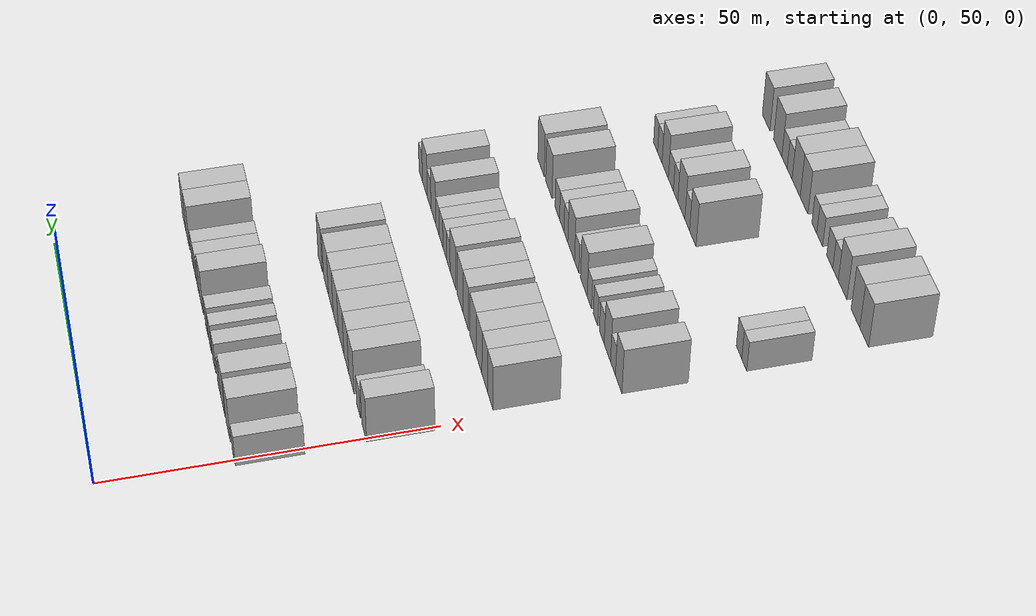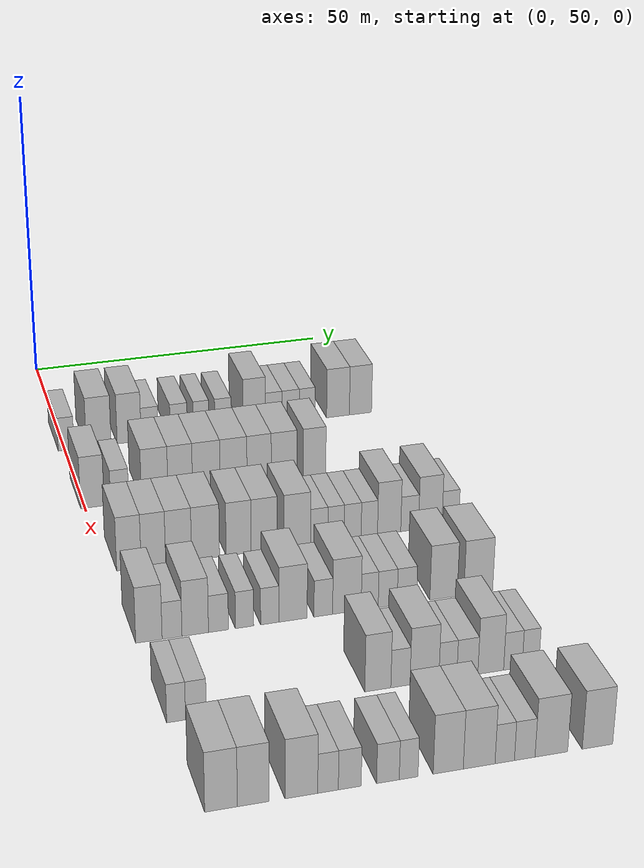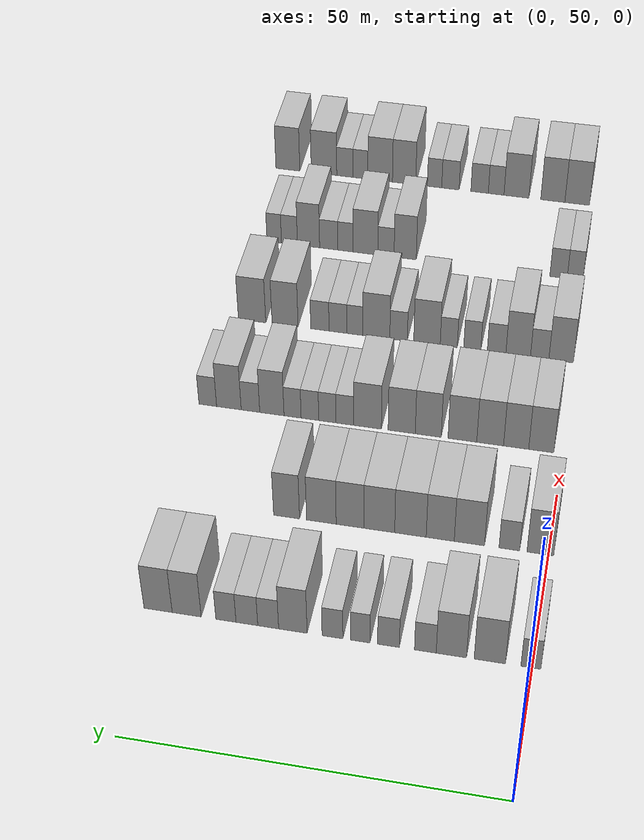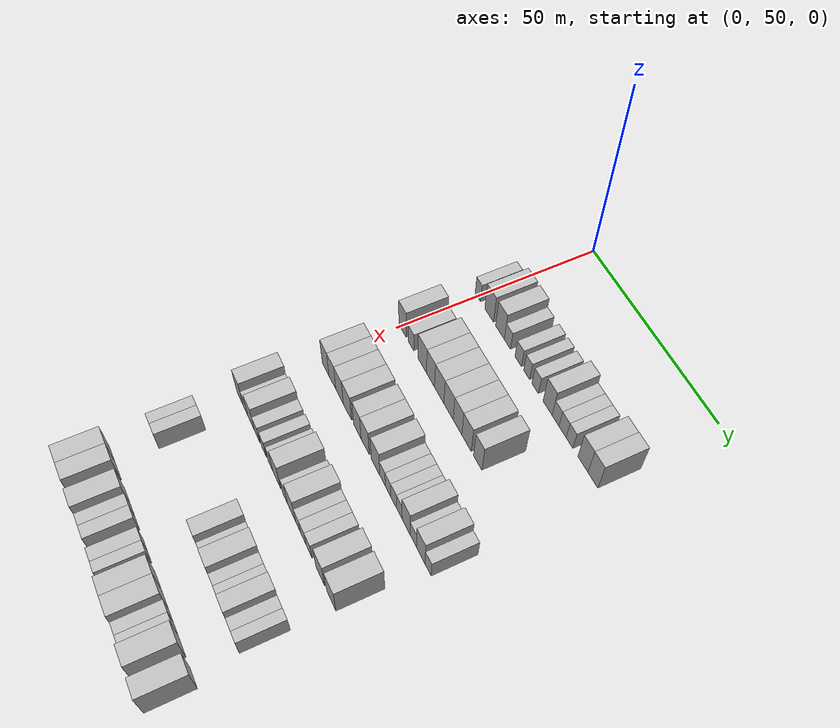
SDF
<sdf version="1.6">
 <world name="default">
  <model name="building_96">
   <static>1</static>
   <pose>25.0000 50.2484 0 0.000000 0.000000 0.000000</pose>
   <link name="link">
    <pose>0 0 3.00 0 0 0</pose>
    <collision name="collision"><geometry><box><size>10.0000 2.5949 6.0000</size></box></geometry></collision>
    <visual name="visual">
     <cast_shadows>0</cast_shadows>
     <geometry><box><size>10.0000 2.5949 6.0000</size></box></geometry>
     <material>
      <script>
       <uri>model://HANNAS_wall/materials/scripts</uri>
       <uri>model://HANNAS_wall/materials/textures</uri>
       <name>vrc/HANNAS_wall</name>
      </script>
     </material>
    </visual>
   </link>
  </model>
  <model name="building_97">
   <static>1</static>
   <pose>25.0000 55.5874 0 0.000000 0.000000 0.000000</pose>
   <link name="link">
    <pose>0 0 4.50 0 0 0</pose>
    <collision name="collision"><geometry><box><size>10.0000 4.0831 9.0000</size></box></geometry></collision>
    <visual name="visual">
     <cast_shadows>0</cast_shadows>
     <geometry><box><size>10.0000 4.0831 9.0000</size></box></geometry>
     <material>
      <script>
       <uri>model://HANNAS_wall/materials/scripts</uri>
       <uri>model://HANNAS_wall/materials/textures</uri>
       <name>vrc/HANNAS_wall</name>
      </script>
     </material>
    </visual>
   </link>
  </model>
  <model name="building_98">
   <static>1</static>
   <pose>25.0000 60.6156 0 0.000000 0.000000 0.000000</pose>
   <link name="link">
    <pose>0 0 4.50 0 0 0</pose>
    <collision name="collision"><geometry><box><size>10.0000 3.9732 9.0000</size></box></geometry></collision>
    <visual name="visual">
     <cast_shadows>0</cast_shadows>
     <geometry><box><size>10.0000 3.9732 9.0000</size></box></geometry>
     <material>
      <script>
       <uri>model://HANNAS_wall/materials/scripts</uri>
       <uri>model://HANNAS_wall/materials/textures</uri>
       <name>vrc/HANNAS_wall</name>
      </script>
     </material>
    </visual>
   </link>
  </model>
  <model name="building_99">
   <static>1</static>
   <pose>25.0000 64.0309 0 0.000000 0.000000 0.000000</pose>
   <link name="link">
    <pose>0 0 3.00 0 0 0</pose>
    <collision name="collision"><geometry><box><size>10.0000 2.8574 6.0000</size></box></geometry></collision>
    <visual name="visual">
     <cast_shadows>0</cast_shadows>
     <geometry><box><size>10.0000 2.8574 6.0000</size></box></geometry>
     <material>
      <script>
       <uri>model://HANNAS_wall/materials/scripts</uri>
       <uri>model://HANNAS_wall/materials/textures</uri>
       <name>vrc/HANNAS_wall</name>
      </script>
     </material>
    </visual>
   </link>
  </model>
  <model name="building_100">
   <static>1</static>
   <pose>25.0000 68.9005 0 0.000000 0.000000 0.000000</pose>
   <link name="link">
    <pose>0 0 3.00 0 0 0</pose>
    <collision name="collision"><geometry><box><size>10.0000 2.8818 6.0000</size></box></geometry></collision>
    <visual name="visual">
     <cast_shadows>0</cast_shadows>
     <geometry><box><size>10.0000 2.8818 6.0000</size></box></geometry>
     <material>
      <script>
       <uri>model://HANNAS_wall/materials/scripts</uri>
       <uri>model://HANNAS_wall/materials/textures</uri>
       <name>vrc/HANNAS_wall</name>
      </script>
     </material>
    </visual>
   </link>
  </model>
  <model name="building_101">
   <static>1</static>
   <pose>25.0000 72.6469 0 0.000000 0.000000 0.000000</pose>
   <link name="link">
    <pose>0 0 3.00 0 0 0</pose>
    <collision name="collision"><geometry><box><size>10.0000 2.6111 6.0000</size></box></geometry></collision>
    <visual name="visual">
     <cast_shadows>0</cast_shadows>
     <geometry><box><size>10.0000 2.6111 6.0000</size></box></geometry>
     <material>
      <script>
       <uri>model://HANNAS_wall/materials/scripts</uri>
       <uri>model://HANNAS_wall/materials/textures</uri>
       <name>vrc/HANNAS_wall</name>
      </script>
     </material>
    </visual>
   </link>
  </model>
  <model name="building_102">
   <static>1</static>
   <pose>25.0000 76.3425 0 0.000000 0.000000 0.000000</pose>
   <link name="link">
    <pose>0 0 3.00 0 0 0</pose>
    <collision name="collision"><geometry><box><size>10.0000 2.7801 6.0000</size></box></geometry></collision>
    <visual name="visual">
     <cast_shadows>0</cast_shadows>
     <geometry><box><size>10.0000 2.7801 6.0000</size></box></geometry>
     <material>
      <script>
       <uri>model://HANNAS_wall/materials/scripts</uri>
       <uri>model://HANNAS_wall/materials/textures</uri>
       <name>vrc/HANNAS_wall</name>
      </script>
     </material>
    </visual>
   </link>
  </model>
  <model name="building_103">
   <static>1</static>
   <pose>25.0000 81.6459 0 0.000000 0.000000 0.000000</pose>
   <link name="link">
    <pose>0 0 4.50 0 0 0</pose>
    <collision name="collision"><geometry><box><size>10.0000 3.8268 9.0000</size></box></geometry></collision>
    <visual name="visual">
     <cast_shadows>0</cast_shadows>
     <geometry><box><size>10.0000 3.8268 9.0000</size></box></geometry>
     <material>
      <script>
       <uri>model://HANNAS_wall/materials/scripts</uri>
       <uri>model://HANNAS_wall/materials/textures</uri>
       <name>vrc/HANNAS_wall</name>
      </script>
     </material>
    </visual>
   </link>
  </model>
  <model name="building_104">
   <static>1</static>
   <pose>25.0000 84.9682 0 0.000000 0.000000 0.000000</pose>
   <link name="link">
    <pose>0 0 3.00 0 0 0</pose>
    <collision name="collision"><geometry><box><size>10.0000 2.8178 6.0000</size></box></geometry></collision>
    <visual name="visual">
     <cast_shadows>0</cast_shadows>
     <geometry><box><size>10.0000 2.8178 6.0000</size></box></geometry>
     <material>
      <script>
       <uri>model://HANNAS_wall/materials/scripts</uri>
       <uri>model://HANNAS_wall/materials/textures</uri>
       <name>vrc/HANNAS_wall</name>
      </script>
     </material>
    </visual>
   </link>
  </model>
  <model name="building_105">
   <static>1</static>
   <pose>25.0000 87.8479 0 0.000000 0.000000 0.000000</pose>
   <link name="link">
    <pose>0 0 3.00 0 0 0</pose>
    <collision name="collision"><geometry><box><size>10.0000 2.9416 6.0000</size></box></geometry></collision>
    <visual name="visual">
     <cast_shadows>0</cast_shadows>
     <geometry><box><size>10.0000 2.9416 6.0000</size></box></geometry>
     <material>
      <script>
       <uri>model://HANNAS_wall/materials/scripts</uri>
       <uri>model://HANNAS_wall/materials/textures</uri>
       <name>vrc/HANNAS_wall</name>
      </script>
     </material>
    </visual>
   </link>
  </model>
  <model name="building_106">
   <static>1</static>
   <pose>25.0000 90.6878 0 0.000000 0.000000 0.000000</pose>
   <link name="link">
    <pose>0 0 3.00 0 0 0</pose>
    <collision name="collision"><geometry><box><size>10.0000 2.7381 6.0000</size></box></geometry></collision>
    <visual name="visual">
     <cast_shadows>0</cast_shadows>
     <geometry><box><size>10.0000 2.7381 6.0000</size></box></geometry>
     <material>
      <script>
       <uri>model://HANNAS_wall/materials/scripts</uri>
       <uri>model://HANNAS_wall/materials/textures</uri>
       <name>vrc/HANNAS_wall</name>
      </script>
     </material>
    </visual>
   </link>
  </model>
  <model name="building_107">
   <static>1</static>
   <pose>25.0000 96.0374 0 0.000000 0.000000 0.000000</pose>
   <link name="link">
    <pose>0 0 4.50 0 0 0</pose>
    <collision name="collision"><geometry><box><size>10.0000 3.9611 9.0000</size></box></geometry></collision>
    <visual name="visual">
     <cast_shadows>0</cast_shadows>
     <geometry><box><size>10.0000 3.9611 9.0000</size></box></geometry>
     <material>
      <script>
       <uri>model://HANNAS_wall/materials/scripts</uri>
       <uri>model://HANNAS_wall/materials/textures</uri>
       <name>vrc/HANNAS_wall</name>
      </script>
     </material>
    </visual>
   </link>
  </model>
  <model name="building_108">
   <static>1</static>
   <pose>25.0000 99.9492 0 0.000000 0.000000 0.000000</pose>
   <link name="link">
    <pose>0 0 4.50 0 0 0</pose>
    <collision name="collision"><geometry><box><size>10.0000 3.8624 9.0000</size></box></geometry></collision>
    <visual name="visual">
     <cast_shadows>0</cast_shadows>
     <geometry><box><size>10.0000 3.8624 9.0000</size></box></geometry>
     <material>
      <script>
       <uri>model://HANNAS_wall/materials/scripts</uri>
       <uri>model://HANNAS_wall/materials/textures</uri>
       <name>vrc/HANNAS_wall</name>
      </script>
     </material>
    </visual>
   </link>
  </model>
  <model name="building_282">
   <static>1</static>
   <pose>44.0000 51.1766 0 0.000000 0.000000 0.000000</pose>
   <link name="link">
    <pose>0 0 4.50 0 0 0</pose>
    <collision name="collision"><geometry><box><size>10.0000 3.6760 9.0000</size></box></geometry></collision>
    <visual name="visual">
     <cast_shadows>0</cast_shadows>
     <geometry><box><size>10.0000 3.6760 9.0000</size></box></geometry>
     <material>
      <script>
       <uri>model://HANNAS_wall/materials/scripts</uri>
       <uri>model://HANNAS_wall/materials/textures</uri>
       <name>vrc/HANNAS_wall</name>
      </script>
     </material>
    </visual>
   </link>
  </model>
  <model name="building_283">
   <static>1</static>
   <pose>44.0000 55.4417 0 0.000000 0.000000 0.000000</pose>
   <link name="link">
    <pose>0 0 3.00 0 0 0</pose>
    <collision name="collision"><geometry><box><size>10.0000 2.8542 6.0000</size></box></geometry></collision>
    <visual name="visual">
     <cast_shadows>0</cast_shadows>
     <geometry><box><size>10.0000 2.8542 6.0000</size></box></geometry>
     <material>
      <script>
       <uri>model://HANNAS_wall/materials/scripts</uri>
       <uri>model://HANNAS_wall/materials/textures</uri>
       <name>vrc/HANNAS_wall</name>
      </script>
     </material>
    </visual>
   </link>
  </model>
  <model name="building_284">
   <static>1</static>
   <pose>44.0000 60.9685 0 0.000000 0.000000 0.000000</pose>
   <link name="link">
    <pose>0 0 4.50 0 0 0</pose>
    <collision name="collision"><geometry><box><size>10.0000 4.1994 9.0000</size></box></geometry></collision>
    <visual name="visual">
     <cast_shadows>0</cast_shadows>
     <geometry><box><size>10.0000 4.1994 9.0000</size></box></geometry>
     <material>
      <script>
       <uri>model://HANNAS_wall/materials/scripts</uri>
       <uri>model://HANNAS_wall/materials/textures</uri>
       <name>vrc/HANNAS_wall</name>
      </script>
     </material>
    </visual>
   </link>
  </model>
  <model name="building_285">
   <static>1</static>
   <pose>44.0000 65.0219 0 0.000000 0.000000 0.000000</pose>
   <link name="link">
    <pose>0 0 4.50 0 0 0</pose>
    <collision name="collision"><geometry><box><size>10.0000 3.9074 9.0000</size></box></geometry></collision>
    <visual name="visual">
     <cast_shadows>0</cast_shadows>
     <geometry><box><size>10.0000 3.9074 9.0000</size></box></geometry>
     <material>
      <script>
       <uri>model://HANNAS_wall/materials/scripts</uri>
       <uri>model://HANNAS_wall/materials/textures</uri>
       <name>vrc/HANNAS_wall</name>
      </script>
     </material>
    </visual>
   </link>
  </model>
  <model name="building_286">
   <static>1</static>
   <pose>44.0000 69.1785 0 0.000000 0.000000 0.000000</pose>
   <link name="link">
    <pose>0 0 4.50 0 0 0</pose>
    <collision name="collision"><geometry><box><size>10.0000 4.4058 9.0000</size></box></geometry></collision>
    <visual name="visual">
     <cast_shadows>0</cast_shadows>
     <geometry><box><size>10.0000 4.4058 9.0000</size></box></geometry>
     <material>
      <script>
       <uri>model://HANNAS_wall/materials/scripts</uri>
       <uri>model://HANNAS_wall/materials/textures</uri>
       <name>vrc/HANNAS_wall</name>
      </script>
     </material>
    </visual>
   </link>
  </model>
  <model name="building_287">
   <static>1</static>
   <pose>44.0000 73.5470 0 0.000000 0.000000 0.000000</pose>
   <link name="link">
    <pose>0 0 4.50 0 0 0</pose>
    <collision name="collision"><geometry><box><size>10.0000 4.3311 9.0000</size></box></geometry></collision>
    <visual name="visual">
     <cast_shadows>0</cast_shadows>
     <geometry><box><size>10.0000 4.3311 9.0000</size></box></geometry>
     <material>
      <script>
       <uri>model://HANNAS_wall/materials/scripts</uri>
       <uri>model://HANNAS_wall/materials/textures</uri>
       <name>vrc/HANNAS_wall</name>
      </script>
     </material>
    </visual>
   </link>
  </model>
  <model name="building_288">
   <static>1</static>
   <pose>44.0000 77.6690 0 0.000000 0.000000 0.000000</pose>
   <link name="link">
    <pose>0 0 4.50 0 0 0</pose>
    <collision name="collision"><geometry><box><size>10.0000 3.9130 9.0000</size></box></geometry></collision>
    <visual name="visual">
     <cast_shadows>0</cast_shadows>
     <geometry><box><size>10.0000 3.9130 9.0000</size></box></geometry>
     <material>
      <script>
       <uri>model://HANNAS_wall/materials/scripts</uri>
       <uri>model://HANNAS_wall/materials/textures</uri>
       <name>vrc/HANNAS_wall</name>
      </script>
     </material>
    </visual>
   </link>
  </model>
  <model name="building_289">
   <static>1</static>
   <pose>44.0000 81.7234 0 0.000000 0.000000 0.000000</pose>
   <link name="link">
    <pose>0 0 4.50 0 0 0</pose>
    <collision name="collision"><geometry><box><size>10.0000 4.1957 9.0000</size></box></geometry></collision>
    <visual name="visual">
     <cast_shadows>0</cast_shadows>
     <geometry><box><size>10.0000 4.1957 9.0000</size></box></geometry>
     <material>
      <script>
       <uri>model://HANNAS_wall/materials/scripts</uri>
       <uri>model://HANNAS_wall/materials/textures</uri>
       <name>vrc/HANNAS_wall</name>
      </script>
     </material>
    </visual>
   </link>
  </model>
  <model name="building_290">
   <static>1</static>
   <pose>44.0000 86.6669 0 0.000000 0.000000 0.000000</pose>
   <link name="link">
    <pose>0 0 4.50 0 0 0</pose>
    <collision name="collision"><geometry><box><size>10.0000 3.6913 9.0000</size></box></geometry></collision>
    <visual name="visual">
     <cast_shadows>0</cast_shadows>
     <geometry><box><size>10.0000 3.6913 9.0000</size></box></geometry>
     <material>
      <script>
       <uri>model://HANNAS_wall/materials/scripts</uri>
       <uri>model://HANNAS_wall/materials/textures</uri>
       <name>vrc/HANNAS_wall</name>
      </script>
     </material>
    </visual>
   </link>
  </model>
  <model name="building_444">
   <static>1</static>
   <pose>63.0000 53.2009 0 0.000000 0.000000 0.000000</pose>
   <link name="link">
    <pose>0 0 4.50 0 0 0</pose>
    <collision name="collision"><geometry><box><size>10.0000 3.6433 9.0000</size></box></geometry></collision>
    <visual name="visual">
     <cast_shadows>0</cast_shadows>
     <geometry><box><size>10.0000 3.6433 9.0000</size></box></geometry>
     <material>
      <script>
       <uri>model://HANNAS_wall/materials/scripts</uri>
       <uri>model://HANNAS_wall/materials/textures</uri>
       <name>vrc/HANNAS_wall</name>
      </script>
     </material>
    </visual>
   </link>
  </model>
  <model name="building_445">
   <static>1</static>
   <pose>63.0000 56.8522 0 0.000000 0.000000 0.000000</pose>
   <link name="link">
    <pose>0 0 4.50 0 0 0</pose>
    <collision name="collision"><geometry><box><size>10.0000 3.6593 9.0000</size></box></geometry></collision>
    <visual name="visual">
     <cast_shadows>0</cast_shadows>
     <geometry><box><size>10.0000 3.6593 9.0000</size></box></geometry>
     <material>
      <script>
       <uri>model://HANNAS_wall/materials/scripts</uri>
       <uri>model://HANNAS_wall/materials/textures</uri>
       <name>vrc/HANNAS_wall</name>
      </script>
     </material>
    </visual>
   </link>
  </model>
  <model name="building_446">
   <static>1</static>
   <pose>63.0000 60.6378 0 0.000000 0.000000 0.000000</pose>
   <link name="link">
    <pose>0 0 4.50 0 0 0</pose>
    <collision name="collision"><geometry><box><size>10.0000 3.9119 9.0000</size></box></geometry></collision>
    <visual name="visual">
     <cast_shadows>0</cast_shadows>
     <geometry><box><size>10.0000 3.9119 9.0000</size></box></geometry>
     <material>
      <script>
       <uri>model://HANNAS_wall/materials/scripts</uri>
       <uri>model://HANNAS_wall/materials/textures</uri>
       <name>vrc/HANNAS_wall</name>
      </script>
     </material>
    </visual>
   </link>
  </model>
  <model name="building_447">
   <static>1</static>
   <pose>63.0000 64.7044 0 0.000000 0.000000 0.000000</pose>
   <link name="link">
    <pose>0 0 4.50 0 0 0</pose>
    <collision name="collision"><geometry><box><size>10.0000 4.2214 9.0000</size></box></geometry></collision>
    <visual name="visual">
     <cast_shadows>0</cast_shadows>
     <geometry><box><size>10.0000 4.2214 9.0000</size></box></geometry>
     <material>
      <script>
       <uri>model://HANNAS_wall/materials/scripts</uri>
       <uri>model://HANNAS_wall/materials/textures</uri>
       <name>vrc/HANNAS_wall</name>
      </script>
     </material>
    </visual>
   </link>
  </model>
  <model name="building_448">
   <static>1</static>
   <pose>63.0000 69.7297 0 0.000000 0.000000 0.000000</pose>
   <link name="link">
    <pose>0 0 4.50 0 0 0</pose>
    <collision name="collision"><geometry><box><size>10.0000 3.8292 9.0000</size></box></geometry></collision>
    <visual name="visual">
     <cast_shadows>0</cast_shadows>
     <geometry><box><size>10.0000 3.8292 9.0000</size></box></geometry>
     <material>
      <script>
       <uri>model://HANNAS_wall/materials/scripts</uri>
       <uri>model://HANNAS_wall/materials/textures</uri>
       <name>vrc/HANNAS_wall</name>
      </script>
     </material>
    </visual>
   </link>
  </model>
  <model name="building_449">
   <static>1</static>
   <pose>63.0000 73.6519 0 0.000000 0.000000 0.000000</pose>
   <link name="link">
    <pose>0 0 4.50 0 0 0</pose>
    <collision name="collision"><geometry><box><size>10.0000 4.0152 9.0000</size></box></geometry></collision>
    <visual name="visual">
     <cast_shadows>0</cast_shadows>
     <geometry><box><size>10.0000 4.0152 9.0000</size></box></geometry>
     <material>
      <script>
       <uri>model://HANNAS_wall/materials/scripts</uri>
       <uri>model://HANNAS_wall/materials/textures</uri>
       <name>vrc/HANNAS_wall</name>
      </script>
     </material>
    </visual>
   </link>
  </model>
  <model name="building_450">
   <static>1</static>
   <pose>63.0000 78.7221 0 0.000000 0.000000 0.000000</pose>
   <link name="link">
    <pose>0 0 4.50 0 0 0</pose>
    <collision name="collision"><geometry><box><size>10.0000 4.1252 9.0000</size></box></geometry></collision>
    <visual name="visual">
     <cast_shadows>0</cast_shadows>
     <geometry><box><size>10.0000 4.1252 9.0000</size></box></geometry>
     <material>
      <script>
       <uri>model://HANNAS_wall/materials/scripts</uri>
       <uri>model://HANNAS_wall/materials/textures</uri>
       <name>vrc/HANNAS_wall</name>
      </script>
     </material>
    </visual>
   </link>
  </model>
  <model name="building_451">
   <static>1</static>
   <pose>63.0000 82.1133 0 0.000000 0.000000 0.000000</pose>
   <link name="link">
    <pose>0 0 3.00 0 0 0</pose>
    <collision name="collision"><geometry><box><size>10.0000 2.6571 6.0000</size></box></geometry></collision>
    <visual name="visual">
     <cast_shadows>0</cast_shadows>
     <geometry><box><size>10.0000 2.6571 6.0000</size></box></geometry>
     <material>
      <script>
       <uri>model://HANNAS_wall/materials/scripts</uri>
       <uri>model://HANNAS_wall/materials/textures</uri>
       <name>vrc/HANNAS_wall</name>
      </script>
     </material>
    </visual>
   </link>
  </model>
  <model name="building_452">
   <static>1</static>
   <pose>63.0000 84.7271 0 0.000000 0.000000 0.000000</pose>
   <link name="link">
    <pose>0 0 3.00 0 0 0</pose>
    <collision name="collision"><geometry><box><size>10.0000 2.5704 6.0000</size></box></geometry></collision>
    <visual name="visual">
     <cast_shadows>0</cast_shadows>
     <geometry><box><size>10.0000 2.5704 6.0000</size></box></geometry>
     <material>
      <script>
       <uri>model://HANNAS_wall/materials/scripts</uri>
       <uri>model://HANNAS_wall/materials/textures</uri>
       <name>vrc/HANNAS_wall</name>
      </script>
     </material>
    </visual>
   </link>
  </model>
  <model name="building_453">
   <static>1</static>
   <pose>63.0000 87.3354 0 0.000000 0.000000 0.000000</pose>
   <link name="link">
    <pose>0 0 3.00 0 0 0</pose>
    <collision name="collision"><geometry><box><size>10.0000 2.6463 6.0000</size></box></geometry></collision>
    <visual name="visual">
     <cast_shadows>0</cast_shadows>
     <geometry><box><size>10.0000 2.6463 6.0000</size></box></geometry>
     <material>
      <script>
       <uri>model://HANNAS_wall/materials/scripts</uri>
       <uri>model://HANNAS_wall/materials/textures</uri>
       <name>vrc/HANNAS_wall</name>
      </script>
     </material>
    </visual>
   </link>
  </model>
  <model name="building_454">
   <static>1</static>
   <pose>63.0000 89.9428 0 0.000000 0.000000 0.000000</pose>
   <link name="link">
    <pose>0 0 3.00 0 0 0</pose>
    <collision name="collision"><geometry><box><size>10.0000 2.5684 6.0000</size></box></geometry></collision>
    <visual name="visual">
     <cast_shadows>0</cast_shadows>
     <geometry><box><size>10.0000 2.5684 6.0000</size></box></geometry>
     <material>
      <script>
       <uri>model://HANNAS_wall/materials/scripts</uri>
       <uri>model://HANNAS_wall/materials/textures</uri>
       <name>vrc/HANNAS_wall</name>
      </script>
     </material>
    </visual>
   </link>
  </model>
  <model name="building_455">
   <static>1</static>
   <pose>63.0000 93.0637 0 0.000000 0.000000 0.000000</pose>
   <link name="link">
    <pose>0 0 4.50 0 0 0</pose>
    <collision name="collision"><geometry><box><size>10.0000 3.6734 9.0000</size></box></geometry></collision>
    <visual name="visual">
     <cast_shadows>0</cast_shadows>
     <geometry><box><size>10.0000 3.6734 9.0000</size></box></geometry>
     <material>
      <script>
       <uri>model://HANNAS_wall/materials/scripts</uri>
       <uri>model://HANNAS_wall/materials/textures</uri>
       <name>vrc/HANNAS_wall</name>
      </script>
     </material>
    </visual>
   </link>
  </model>
  <model name="building_456">
   <static>1</static>
   <pose>63.0000 96.3059 0 0.000000 0.000000 0.000000</pose>
   <link name="link">
    <pose>0 0 3.00 0 0 0</pose>
    <collision name="collision"><geometry><box><size>10.0000 2.8109 6.0000</size></box></geometry></collision>
    <visual name="visual">
     <cast_shadows>0</cast_shadows>
     <geometry><box><size>10.0000 2.8109 6.0000</size></box></geometry>
     <material>
      <script>
       <uri>model://HANNAS_wall/materials/scripts</uri>
       <uri>model://HANNAS_wall/materials/textures</uri>
       <name>vrc/HANNAS_wall</name>
      </script>
     </material>
    </visual>
   </link>
  </model>
  <model name="building_457">
   <static>1</static>
   <pose>63.0000 99.5817 0 0.000000 0.000000 0.000000</pose>
   <link name="link">
    <pose>0 0 4.50 0 0 0</pose>
    <collision name="collision"><geometry><box><size>10.0000 3.7407 9.0000</size></box></geometry></collision>
    <visual name="visual">
     <cast_shadows>0</cast_shadows>
     <geometry><box><size>10.0000 3.7407 9.0000</size></box></geometry>
     <material>
      <script>
       <uri>model://HANNAS_wall/materials/scripts</uri>
       <uri>model://HANNAS_wall/materials/textures</uri>
       <name>vrc/HANNAS_wall</name>
      </script>
     </material>
    </visual>
   </link>
  </model>
  <model name="building_458">
   <static>1</static>
   <pose>63.0000 102.7956 0 0.000000 0.000000 0.000000</pose>
   <link name="link">
    <pose>0 0 3.00 0 0 0</pose>
    <collision name="collision"><geometry><box><size>10.0000 2.6871 6.0000</size></box></geometry></collision>
    <visual name="visual">
     <cast_shadows>0</cast_shadows>
     <geometry><box><size>10.0000 2.6871 6.0000</size></box></geometry>
     <material>
      <script>
       <uri>model://HANNAS_wall/materials/scripts</uri>
       <uri>model://HANNAS_wall/materials/textures</uri>
       <name>vrc/HANNAS_wall</name>
      </script>
     </material>
    </visual>
   </link>
  </model>
  <model name="building_624">
   <static>1</static>
   <pose>82.0000 52.3250 0 0.000000 0.000000 0.000000</pose>
   <link name="link">
    <pose>0 0 4.50 0 0 0</pose>
    <collision name="collision"><geometry><box><size>10.0000 3.7265 9.0000</size></box></geometry></collision>
    <visual name="visual">
     <cast_shadows>0</cast_shadows>
     <geometry><box><size>10.0000 3.7265 9.0000</size></box></geometry>
     <material>
      <script>
       <uri>model://HANNAS_wall/materials/scripts</uri>
       <uri>model://HANNAS_wall/materials/textures</uri>
       <name>vrc/HANNAS_wall</name>
      </script>
     </material>
    </visual>
   </link>
  </model>
  <model name="building_625">
   <static>1</static>
   <pose>82.0000 55.5964 0 0.000000 0.000000 0.000000</pose>
   <link name="link">
    <pose>0 0 3.00 0 0 0</pose>
    <collision name="collision"><geometry><box><size>10.0000 2.8162 6.0000</size></box></geometry></collision>
    <visual name="visual">
     <cast_shadows>0</cast_shadows>
     <geometry><box><size>10.0000 2.8162 6.0000</size></box></geometry>
     <material>
      <script>
       <uri>model://HANNAS_wall/materials/scripts</uri>
       <uri>model://HANNAS_wall/materials/textures</uri>
       <name>vrc/HANNAS_wall</name>
      </script>
     </material>
    </visual>
   </link>
  </model>
  <model name="building_626">
   <static>1</static>
   <pose>82.0000 58.8875 0 0.000000 0.000000 0.000000</pose>
   <link name="link">
    <pose>0 0 4.50 0 0 0</pose>
    <collision name="collision"><geometry><box><size>10.0000 3.7661 9.0000</size></box></geometry></collision>
    <visual name="visual">
     <cast_shadows>0</cast_shadows>
     <geometry><box><size>10.0000 3.7661 9.0000</size></box></geometry>
     <material>
      <script>
       <uri>model://HANNAS_wall/materials/scripts</uri>
       <uri>model://HANNAS_wall/materials/textures</uri>
       <name>vrc/HANNAS_wall</name>
      </script>
     </material>
    </visual>
   </link>
  </model>
  <model name="building_627">
   <static>1</static>
   <pose>82.0000 62.1999 0 0.000000 0.000000 0.000000</pose>
   <link name="link">
    <pose>0 0 3.00 0 0 0</pose>
    <collision name="collision"><geometry><box><size>10.0000 2.8587 6.0000</size></box></geometry></collision>
    <visual name="visual">
     <cast_shadows>0</cast_shadows>
     <geometry><box><size>10.0000 2.8587 6.0000</size></box></geometry>
     <material>
      <script>
       <uri>model://HANNAS_wall/materials/scripts</uri>
       <uri>model://HANNAS_wall/materials/textures</uri>
       <name>vrc/HANNAS_wall</name>
      </script>
     </material>
    </visual>
   </link>
  </model>
  <model name="building_628">
   <static>1</static>
   <pose>82.0000 65.9488 0 0.000000 0.000000 0.000000</pose>
   <link name="link">
    <pose>0 0 3.00 0 0 0</pose>
    <collision name="collision"><geometry><box><size>10.0000 2.6391 6.0000</size></box></geometry></collision>
    <visual name="visual">
     <cast_shadows>0</cast_shadows>
     <geometry><box><size>10.0000 2.6391 6.0000</size></box></geometry>
     <material>
      <script>
       <uri>model://HANNAS_wall/materials/scripts</uri>
       <uri>model://HANNAS_wall/materials/textures</uri>
       <name>vrc/HANNAS_wall</name>
      </script>
     </material>
    </visual>
   </link>
  </model>
  <model name="building_629">
   <static>1</static>
   <pose>82.0000 69.5881 0 0.000000 0.000000 0.000000</pose>
   <link name="link">
    <pose>0 0 3.00 0 0 0</pose>
    <collision name="collision"><geometry><box><size>10.0000 2.6393 6.0000</size></box></geometry></collision>
    <visual name="visual">
     <cast_shadows>0</cast_shadows>
     <geometry><box><size>10.0000 2.6393 6.0000</size></box></geometry>
     <material>
      <script>
       <uri>model://HANNAS_wall/materials/scripts</uri>
       <uri>model://HANNAS_wall/materials/textures</uri>
       <name>vrc/HANNAS_wall</name>
      </script>
     </material>
    </visual>
   </link>
  </model>
  <model name="building_630">
   <static>1</static>
   <pose>82.0000 72.9670 0 0.000000 0.000000 0.000000</pose>
   <link name="link">
    <pose>0 0 4.50 0 0 0</pose>
    <collision name="collision"><geometry><box><size>10.0000 4.1186 9.0000</size></box></geometry></collision>
    <visual name="visual">
     <cast_shadows>0</cast_shadows>
     <geometry><box><size>10.0000 4.1186 9.0000</size></box></geometry>
     <material>
      <script>
       <uri>model://HANNAS_wall/materials/scripts</uri>
       <uri>model://HANNAS_wall/materials/textures</uri>
       <name>vrc/HANNAS_wall</name>
      </script>
     </material>
    </visual>
   </link>
  </model>
  <model name="building_631">
   <static>1</static>
   <pose>82.0000 77.3899 0 0.000000 0.000000 0.000000</pose>
   <link name="link">
    <pose>0 0 3.00 0 0 0</pose>
    <collision name="collision"><geometry><box><size>10.0000 2.7272 6.0000</size></box></geometry></collision>
    <visual name="visual">
     <cast_shadows>0</cast_shadows>
     <geometry><box><size>10.0000 2.7272 6.0000</size></box></geometry>
     <material>
      <script>
       <uri>model://HANNAS_wall/materials/scripts</uri>
       <uri>model://HANNAS_wall/materials/textures</uri>
       <name>vrc/HANNAS_wall</name>
      </script>
     </material>
    </visual>
   </link>
  </model>
  <model name="building_632">
   <static>1</static>
   <pose>82.0000 80.8594 0 0.000000 0.000000 0.000000</pose>
   <link name="link">
    <pose>0 0 4.50 0 0 0</pose>
    <collision name="collision"><geometry><box><size>10.0000 4.2118 9.0000</size></box></geometry></collision>
    <visual name="visual">
     <cast_shadows>0</cast_shadows>
     <geometry><box><size>10.0000 4.2118 9.0000</size></box></geometry>
     <material>
      <script>
       <uri>model://HANNAS_wall/materials/scripts</uri>
       <uri>model://HANNAS_wall/materials/textures</uri>
       <name>vrc/HANNAS_wall</name>
      </script>
     </material>
    </visual>
   </link>
  </model>
  <model name="building_633">
   <static>1</static>
   <pose>82.0000 84.2261 0 0.000000 0.000000 0.000000</pose>
   <link name="link">
    <pose>0 0 3.00 0 0 0</pose>
    <collision name="collision"><geometry><box><size>10.0000 2.5215 6.0000</size></box></geometry></collision>
    <visual name="visual">
     <cast_shadows>0</cast_shadows>
     <geometry><box><size>10.0000 2.5215 6.0000</size></box></geometry>
     <material>
      <script>
       <uri>model://HANNAS_wall/materials/scripts</uri>
       <uri>model://HANNAS_wall/materials/textures</uri>
       <name>vrc/HANNAS_wall</name>
      </script>
     </material>
    </visual>
   </link>
  </model>
  <model name="building_634">
   <static>1</static>
   <pose>82.0000 86.8955 0 0.000000 0.000000 0.000000</pose>
   <link name="link">
    <pose>0 0 3.00 0 0 0</pose>
    <collision name="collision"><geometry><box><size>10.0000 2.8173 6.0000</size></box></geometry></collision>
    <visual name="visual">
     <cast_shadows>0</cast_shadows>
     <geometry><box><size>10.0000 2.8173 6.0000</size></box></geometry>
     <material>
      <script>
       <uri>model://HANNAS_wall/materials/scripts</uri>
       <uri>model://HANNAS_wall/materials/textures</uri>
       <name>vrc/HANNAS_wall</name>
      </script>
     </material>
    </visual>
   </link>
  </model>
  <model name="building_635">
   <static>1</static>
   <pose>82.0000 89.7510 0 0.000000 0.000000 0.000000</pose>
   <link name="link">
    <pose>0 0 3.00 0 0 0</pose>
    <collision name="collision"><geometry><box><size>10.0000 2.8939 6.0000</size></box></geometry></collision>
    <visual name="visual">
     <cast_shadows>0</cast_shadows>
     <geometry><box><size>10.0000 2.8939 6.0000</size></box></geometry>
     <material>
      <script>
       <uri>model://HANNAS_wall/materials/scripts</uri>
       <uri>model://HANNAS_wall/materials/textures</uri>
       <name>vrc/HANNAS_wall</name>
      </script>
     </material>
    </visual>
   </link>
  </model>
  <model name="building_636">
   <static>1</static>
   <pose>82.0000 95.2637 0 0.000000 0.000000 0.000000</pose>
   <link name="link">
    <pose>0 0 4.50 0 0 0</pose>
    <collision name="collision"><geometry><box><size>10.0000 4.1314 9.0000</size></box></geometry></collision>
    <visual name="visual">
     <cast_shadows>0</cast_shadows>
     <geometry><box><size>10.0000 4.1314 9.0000</size></box></geometry>
     <material>
      <script>
       <uri>model://HANNAS_wall/materials/scripts</uri>
       <uri>model://HANNAS_wall/materials/textures</uri>
       <name>vrc/HANNAS_wall</name>
      </script>
     </material>
    </visual>
   </link>
  </model>
  <model name="building_637">
   <static>1</static>
   <pose>82.0000 100.5143 0 0.000000 0.000000 0.000000</pose>
   <link name="link">
    <pose>0 0 4.50 0 0 0</pose>
    <collision name="collision"><geometry><box><size>10.0000 4.3698 9.0000</size></box></geometry></collision>
    <visual name="visual">
     <cast_shadows>0</cast_shadows>
     <geometry><box><size>10.0000 4.3698 9.0000</size></box></geometry>
     <material>
      <script>
       <uri>model://HANNAS_wall/materials/scripts</uri>
       <uri>model://HANNAS_wall/materials/textures</uri>
       <name>vrc/HANNAS_wall</name>
      </script>
     </material>
    </visual>
   </link>
  </model>
  <model name="building_801">
   <static>1</static>
   <pose>101.0000 52.0804 0 0.000000 0.000000 0.000000</pose>
   <link name="link">
    <pose>0 0 3.00 0 0 0</pose>
    <collision name="collision"><geometry><box><size>10.0000 2.5208 6.0000</size></box></geometry></collision>
    <visual name="visual">
     <cast_shadows>0</cast_shadows>
     <geometry><box><size>10.0000 2.5208 6.0000</size></box></geometry>
     <material>
      <script>
       <uri>model://HANNAS_wall/materials/scripts</uri>
       <uri>model://HANNAS_wall/materials/textures</uri>
       <name>vrc/HANNAS_wall</name>
      </script>
     </material>
    </visual>
   </link>
  </model>
  <model name="building_802">
   <static>1</static>
   <pose>101.0000 54.7318 0 0.000000 0.000000 0.000000</pose>
   <link name="link">
    <pose>0 0 3.00 0 0 0</pose>
    <collision name="collision"><geometry><box><size>10.0000 2.7818 6.0000</size></box></geometry></collision>
    <visual name="visual">
     <cast_shadows>0</cast_shadows>
     <geometry><box><size>10.0000 2.7818 6.0000</size></box></geometry>
     <material>
      <script>
       <uri>model://HANNAS_wall/materials/scripts</uri>
       <uri>model://HANNAS_wall/materials/textures</uri>
       <name>vrc/HANNAS_wall</name>
      </script>
     </material>
    </visual>
   </link>
  </model>
  <model name="building_803">
   <static>1</static>
   <pose>101.0000 79.5805 0 0.000000 0.000000 0.000000</pose>
   <link name="link">
    <pose>0 0 4.50 0 0 0</pose>
    <collision name="collision"><geometry><box><size>10.0000 3.6385 9.0000</size></box></geometry></collision>
    <visual name="visual">
     <cast_shadows>0</cast_shadows>
     <geometry><box><size>10.0000 3.6385 9.0000</size></box></geometry>
     <material>
      <script>
       <uri>model://HANNAS_wall/materials/scripts</uri>
       <uri>model://HANNAS_wall/materials/textures</uri>
       <name>vrc/HANNAS_wall</name>
      </script>
     </material>
    </visual>
   </link>
  </model>
  <model name="building_804">
   <static>1</static>
   <pose>101.0000 82.7414 0 0.000000 0.000000 0.000000</pose>
   <link name="link">
    <pose>0 0 3.00 0 0 0</pose>
    <collision name="collision"><geometry><box><size>10.0000 2.6832 6.0000</size></box></geometry></collision>
    <visual name="visual">
     <cast_shadows>0</cast_shadows>
     <geometry><box><size>10.0000 2.6832 6.0000</size></box></geometry>
     <material>
      <script>
       <uri>model://HANNAS_wall/materials/scripts</uri>
       <uri>model://HANNAS_wall/materials/textures</uri>
       <name>vrc/HANNAS_wall</name>
      </script>
     </material>
    </visual>
   </link>
  </model>
  <model name="building_805">
   <static>1</static>
   <pose>101.0000 86.1169 0 0.000000 0.000000 0.000000</pose>
   <link name="link">
    <pose>0 0 4.50 0 0 0</pose>
    <collision name="collision"><geometry><box><size>10.0000 4.0679 9.0000</size></box></geometry></collision>
    <visual name="visual">
     <cast_shadows>0</cast_shadows>
     <geometry><box><size>10.0000 4.0679 9.0000</size></box></geometry>
     <material>
      <script>
       <uri>model://HANNAS_wall/materials/scripts</uri>
       <uri>model://HANNAS_wall/materials/textures</uri>
       <name>vrc/HANNAS_wall</name>
      </script>
     </material>
    </visual>
   </link>
  </model>
  <model name="building_806">
   <static>1</static>
   <pose>101.0000 89.4254 0 0.000000 0.000000 0.000000</pose>
   <link name="link">
    <pose>0 0 3.00 0 0 0</pose>
    <collision name="collision"><geometry><box><size>10.0000 2.5490 6.0000</size></box></geometry></collision>
    <visual name="visual">
     <cast_shadows>0</cast_shadows>
     <geometry><box><size>10.0000 2.5490 6.0000</size></box></geometry>
     <material>
      <script>
       <uri>model://HANNAS_wall/materials/scripts</uri>
       <uri>model://HANNAS_wall/materials/textures</uri>
       <name>vrc/HANNAS_wall</name>
      </script>
     </material>
    </visual>
   </link>
  </model>
  <model name="building_807">
   <static>1</static>
   <pose>101.0000 92.1982 0 0.000000 0.000000 0.000000</pose>
   <link name="link">
    <pose>0 0 3.00 0 0 0</pose>
    <collision name="collision"><geometry><box><size>10.0000 2.9967 6.0000</size></box></geometry></collision>
    <visual name="visual">
     <cast_shadows>0</cast_shadows>
     <geometry><box><size>10.0000 2.9967 6.0000</size></box></geometry>
     <material>
      <script>
       <uri>model://HANNAS_wall/materials/scripts</uri>
       <uri>model://HANNAS_wall/materials/textures</uri>
       <name>vrc/HANNAS_wall</name>
      </script>
     </material>
    </visual>
   </link>
  </model>
  <model name="building_808">
   <static>1</static>
   <pose>101.0000 95.5420 0 0.000000 0.000000 0.000000</pose>
   <link name="link">
    <pose>0 0 4.50 0 0 0</pose>
    <collision name="collision"><geometry><box><size>10.0000 3.6909 9.0000</size></box></geometry></collision>
    <visual name="visual">
     <cast_shadows>0</cast_shadows>
     <geometry><box><size>10.0000 3.6909 9.0000</size></box></geometry>
     <material>
      <script>
       <uri>model://HANNAS_wall/materials/scripts</uri>
       <uri>model://HANNAS_wall/materials/textures</uri>
       <name>vrc/HANNAS_wall</name>
      </script>
     </material>
    </visual>
   </link>
  </model>
  <model name="building_809">
   <static>1</static>
   <pose>101.0000 98.7191 0 0.000000 0.000000 0.000000</pose>
   <link name="link">
    <pose>0 0 3.00 0 0 0</pose>
    <collision name="collision"><geometry><box><size>10.0000 2.6633 6.0000</size></box></geometry></collision>
    <visual name="visual">
     <cast_shadows>0</cast_shadows>
     <geometry><box><size>10.0000 2.6633 6.0000</size></box></geometry>
     <material>
      <script>
       <uri>model://HANNAS_wall/materials/scripts</uri>
       <uri>model://HANNAS_wall/materials/textures</uri>
       <name>vrc/HANNAS_wall</name>
      </script>
     </material>
    </visual>
   </link>
  </model>
  <model name="building_810">
   <static>1</static>
   <pose>101.0000 101.2588 0 0.000000 0.000000 0.000000</pose>
   <link name="link">
    <pose>0 0 3.00 0 0 0</pose>
    <collision name="collision"><geometry><box><size>10.0000 2.4160 6.0000</size></box></geometry></collision>
    <visual name="visual">
     <cast_shadows>0</cast_shadows>
     <geometry><box><size>10.0000 2.4160 6.0000</size></box></geometry>
     <material>
      <script>
       <uri>model://HANNAS_wall/materials/scripts</uri>
       <uri>model://HANNAS_wall/materials/textures</uri>
       <name>vrc/HANNAS_wall</name>
      </script>
     </material>
    </visual>
   </link>
  </model>
  <model name="building_964">
   <static>1</static>
   <pose>120.0000 53.6182 0 0.000000 0.000000 0.000000</pose>
   <link name="link">
    <pose>0 0 4.50 0 0 0</pose>
    <collision name="collision"><geometry><box><size>10.0000 4.1183 9.0000</size></box></geometry></collision>
    <visual name="visual">
     <cast_shadows>0</cast_shadows>
     <geometry><box><size>10.0000 4.1183 9.0000</size></box></geometry>
     <material>
      <script>
       <uri>model://HANNAS_wall/materials/scripts</uri>
       <uri>model://HANNAS_wall/materials/textures</uri>
       <name>vrc/HANNAS_wall</name>
      </script>
     </material>
    </visual>
   </link>
  </model>
  <model name="building_965">
   <static>1</static>
   <pose>120.0000 57.7037 0 0.000000 0.000000 0.000000</pose>
   <link name="link">
    <pose>0 0 4.50 0 0 0</pose>
    <collision name="collision"><geometry><box><size>10.0000 4.0528 9.0000</size></box></geometry></collision>
    <visual name="visual">
     <cast_shadows>0</cast_shadows>
     <geometry><box><size>10.0000 4.0528 9.0000</size></box></geometry>
     <material>
      <script>
       <uri>model://HANNAS_wall/materials/scripts</uri>
       <uri>model://HANNAS_wall/materials/textures</uri>
       <name>vrc/HANNAS_wall</name>
      </script>
     </material>
    </visual>
   </link>
  </model>
  <model name="building_966">
   <static>1</static>
   <pose>120.0000 63.8328 0 0.000000 0.000000 0.000000</pose>
   <link name="link">
    <pose>0 0 4.50 0 0 0</pose>
    <collision name="collision"><geometry><box><size>10.0000 4.2053 9.0000</size></box></geometry></collision>
    <visual name="visual">
     <cast_shadows>0</cast_shadows>
     <geometry><box><size>10.0000 4.2053 9.0000</size></box></geometry>
     <material>
      <script>
       <uri>model://HANNAS_wall/materials/scripts</uri>
       <uri>model://HANNAS_wall/materials/textures</uri>
       <name>vrc/HANNAS_wall</name>
      </script>
     </material>
    </visual>
   </link>
  </model>
  <model name="building_967">
   <static>1</static>
   <pose>120.0000 67.2664 0 0.000000 0.000000 0.000000</pose>
   <link name="link">
    <pose>0 0 3.00 0 0 0</pose>
    <collision name="collision"><geometry><box><size>10.0000 2.6618 6.0000</size></box></geometry></collision>
    <visual name="visual">
     <cast_shadows>0</cast_shadows>
     <geometry><box><size>10.0000 2.6618 6.0000</size></box></geometry>
     <material>
      <script>
       <uri>model://HANNAS_wall/materials/scripts</uri>
       <uri>model://HANNAS_wall/materials/textures</uri>
       <name>vrc/HANNAS_wall</name>
      </script>
     </material>
    </visual>
   </link>
  </model>
  <model name="building_968">
   <static>1</static>
   <pose>120.0000 70.0792 0 0.000000 0.000000 0.000000</pose>
   <link name="link">
    <pose>0 0 3.00 0 0 0</pose>
    <collision name="collision"><geometry><box><size>10.0000 2.9637 6.0000</size></box></geometry></collision>
    <visual name="visual">
     <cast_shadows>0</cast_shadows>
     <geometry><box><size>10.0000 2.9637 6.0000</size></box></geometry>
     <material>
      <script>
       <uri>model://HANNAS_wall/materials/scripts</uri>
       <uri>model://HANNAS_wall/materials/textures</uri>
       <name>vrc/HANNAS_wall</name>
      </script>
     </material>
    </visual>
   </link>
  </model>
  <model name="building_969">
   <static>1</static>
   <pose>120.0000 75.0457 0 0.000000 0.000000 0.000000</pose>
   <link name="link">
    <pose>0 0 3.00 0 0 0</pose>
    <collision name="collision"><geometry><box><size>10.0000 2.9691 6.0000</size></box></geometry></collision>
    <visual name="visual">
     <cast_shadows>0</cast_shadows>
     <geometry><box><size>10.0000 2.9691 6.0000</size></box></geometry>
     <material>
      <script>
       <uri>model://HANNAS_wall/materials/scripts</uri>
       <uri>model://HANNAS_wall/materials/textures</uri>
       <name>vrc/HANNAS_wall</name>
      </script>
     </material>
    </visual>
   </link>
  </model>
  <model name="building_970">
   <static>1</static>
   <pose>120.0000 77.7641 0 0.000000 0.000000 0.000000</pose>
   <link name="link">
    <pose>0 0 3.00 0 0 0</pose>
    <collision name="collision"><geometry><box><size>10.0000 2.4677 6.0000</size></box></geometry></collision>
    <visual name="visual">
     <cast_shadows>0</cast_shadows>
     <geometry><box><size>10.0000 2.4677 6.0000</size></box></geometry>
     <material>
      <script>
       <uri>model://HANNAS_wall/materials/scripts</uri>
       <uri>model://HANNAS_wall/materials/textures</uri>
       <name>vrc/HANNAS_wall</name>
      </script>
     </material>
    </visual>
   </link>
  </model>
  <model name="building_971">
   <static>1</static>
   <pose>120.0000 82.9941 0 0.000000 0.000000 0.000000</pose>
   <link name="link">
    <pose>0 0 4.50 0 0 0</pose>
    <collision name="collision"><geometry><box><size>10.0000 3.9924 9.0000</size></box></geometry></collision>
    <visual name="visual">
     <cast_shadows>0</cast_shadows>
     <geometry><box><size>10.0000 3.9924 9.0000</size></box></geometry>
     <material>
      <script>
       <uri>model://HANNAS_wall/materials/scripts</uri>
       <uri>model://HANNAS_wall/materials/textures</uri>
       <name>vrc/HANNAS_wall</name>
      </script>
     </material>
    </visual>
   </link>
  </model>
  <model name="building_972">
   <static>1</static>
   <pose>120.0000 87.1130 0 0.000000 0.000000 0.000000</pose>
   <link name="link">
    <pose>0 0 4.50 0 0 0</pose>
    <collision name="collision"><geometry><box><size>10.0000 4.2453 9.0000</size></box></geometry></collision>
    <visual name="visual">
     <cast_shadows>0</cast_shadows>
     <geometry><box><size>10.0000 4.2453 9.0000</size></box></geometry>
     <material>
      <script>
       <uri>model://HANNAS_wall/materials/scripts</uri>
       <uri>model://HANNAS_wall/materials/textures</uri>
       <name>vrc/HANNAS_wall</name>
      </script>
     </material>
    </visual>
   </link>
  </model>
  <model name="building_973">
   <static>1</static>
   <pose>120.0000 90.5411 0 0.000000 0.000000 0.000000</pose>
   <link name="link">
    <pose>0 0 3.00 0 0 0</pose>
    <collision name="collision"><geometry><box><size>10.0000 2.6110 6.0000</size></box></geometry></collision>
    <visual name="visual">
     <cast_shadows>0</cast_shadows>
     <geometry><box><size>10.0000 2.6110 6.0000</size></box></geometry>
     <material>
      <script>
       <uri>model://HANNAS_wall/materials/scripts</uri>
       <uri>model://HANNAS_wall/materials/textures</uri>
       <name>vrc/HANNAS_wall</name>
      </script>
     </material>
    </visual>
   </link>
  </model>
  <model name="building_974">
   <static>1</static>
   <pose>120.0000 93.2373 0 0.000000 0.000000 0.000000</pose>
   <link name="link">
    <pose>0 0 3.00 0 0 0</pose>
    <collision name="collision"><geometry><box><size>10.0000 2.7813 6.0000</size></box></geometry></collision>
    <visual name="visual">
     <cast_shadows>0</cast_shadows>
     <geometry><box><size>10.0000 2.7813 6.0000</size></box></geometry>
     <material>
      <script>
       <uri>model://HANNAS_wall/materials/scripts</uri>
       <uri>model://HANNAS_wall/materials/textures</uri>
       <name>vrc/HANNAS_wall</name>
      </script>
     </material>
    </visual>
   </link>
  </model>
  <model name="building_975">
   <static>1</static>
   <pose>120.0000 96.8442 0 0.000000 0.000000 0.000000</pose>
   <link name="link">
    <pose>0 0 4.50 0 0 0</pose>
    <collision name="collision"><geometry><box><size>10.0000 4.4325 9.0000</size></box></geometry></collision>
    <visual name="visual">
     <cast_shadows>0</cast_shadows>
     <geometry><box><size>10.0000 4.4325 9.0000</size></box></geometry>
     <material>
      <script>
       <uri>model://HANNAS_wall/materials/scripts</uri>
       <uri>model://HANNAS_wall/materials/textures</uri>
       <name>vrc/HANNAS_wall</name>
      </script>
     </material>
    </visual>
   </link>
  </model>
  <model name="building_976">
   <static>1</static>
   <pose>120.0000 103.1474 0 0.000000 0.000000 0.000000</pose>
   <link name="link">
    <pose>0 0 4.50 0 0 0</pose>
    <collision name="collision"><geometry><box><size>10.0000 4.1739 9.0000</size></box></geometry></collision>
    <visual name="visual">
     <cast_shadows>0</cast_shadows>
     <geometry><box><size>10.0000 4.1739 9.0000</size></box></geometry>
     <material>
      <script>
       <uri>model://HANNAS_wall/materials/scripts</uri>
       <uri>model://HANNAS_wall/materials/textures</uri>
       <name>vrc/HANNAS_wall</name>
      </script>
     </material>
    </visual>
   </link>
  </model>
 </world>
</sdf>
